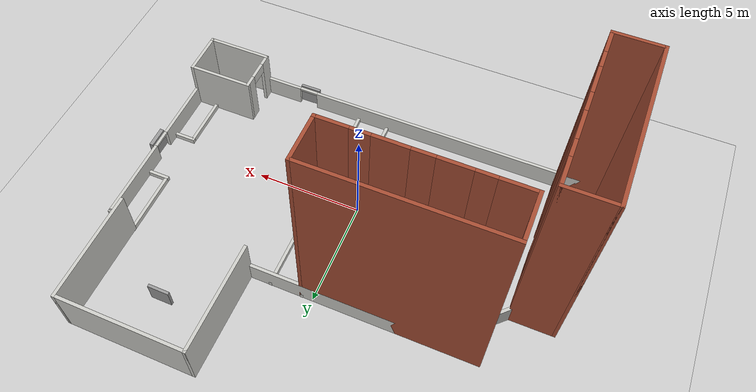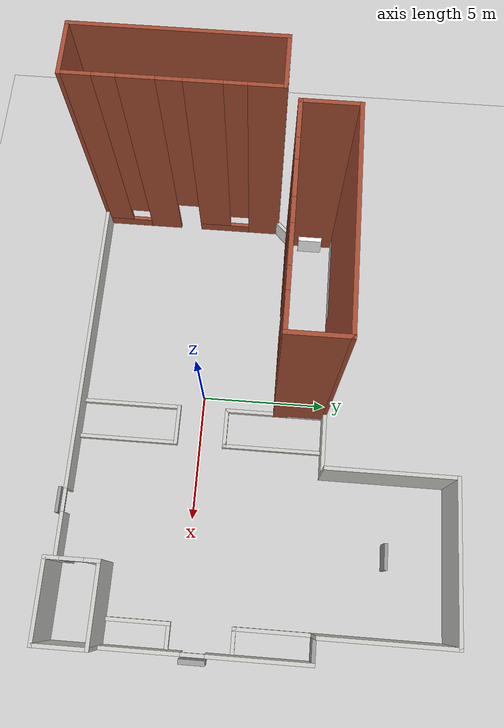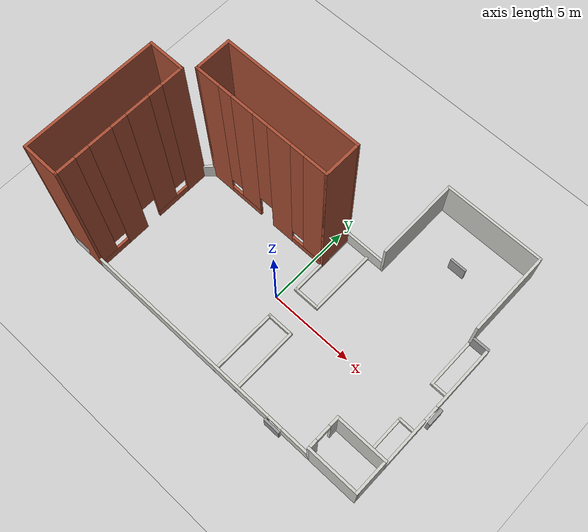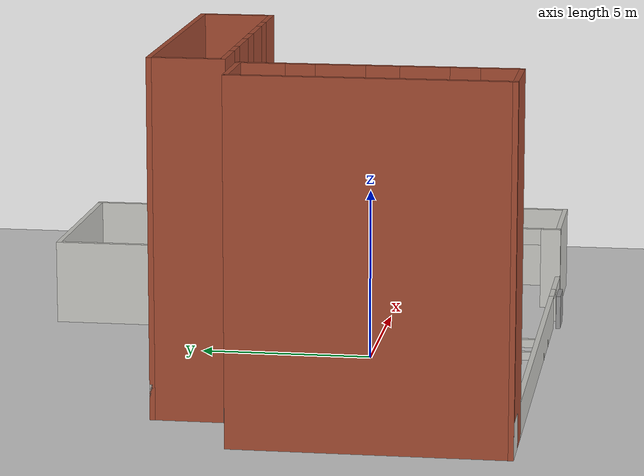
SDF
<sdf version="1.7">
 <world name="default">
  <light name="sun" type="directional">
   <pose>0 0 10 0 -0 0</pose>
   <diffuse>0.8 0.8 0.8 1</diffuse>
   <specular>0.2 0.2 0.2 1</specular>
   <attenuation>
    <range>1000</range>
    <constant>0.9</constant>
    <linear>0.01</linear>
    <quadratic>0.001</quadratic>
   </attenuation>
   <direction>-0.5 0.1 -0.9</direction>
   <spot><inner_angle>0</inner_angle><outer_angle>0</outer_angle><falloff>0</falloff></spot>
  </light>
  <model name="ground_plane">
   <static>1</static>
   <link name="link">
    <collision name="collision">
     <geometry><plane><normal>0 0 1</normal><size>100 100</size></plane></geometry>
     <surface><friction><ode><mu>100</mu><mu2>50</mu2></ode></friction></surface>
    </collision>
    <visual name="visual">
     <cast_shadows>0</cast_shadows>
     <geometry><plane><normal>0 0 1</normal><size>100 100</size></plane></geometry>
     <material>
      <script><uri>file://media/materials/scripts/gazebo.material</uri><name>Gazebo/Grey</name></script>
     </material>
    </visual>
   </link>
  </model>
  <gravity>0 0 -9.8</gravity>
  <magnetic_field>6e-06 2.3e-05 -4.2e-05</magnetic_field>
  <atmosphere type="adiabatic"/>
  <physics type="ode">
   <max_step_size>0.001</max_step_size>
   <real_time_factor>1</real_time_factor>
   <real_time_update_rate>1000</real_time_update_rate>
  </physics>
  <scene><ambient>0.4 0.4 0.4 1</ambient><background>0.7 0.7 0.7 1</background><shadows>1</shadows></scene>
  <audio><device>default</device></audio>
  <spherical_coordinates>
   <surface_model>EARTH_WGS84</surface_model>
   <latitude_deg>0</latitude_deg>
   <longitude_deg>0</longitude_deg>
   <elevation>0</elevation>
   <heading_deg>0</heading_deg>
  </spherical_coordinates>
  <model name="apartment">
   <pose>0 2.5 0 0 -0 0</pose>
   <link name="Wall_11">
    <collision name="Wall_11_Collision">
     <geometry><box><size>3.15 0.15 2.5</size></box></geometry>
     <pose>0 0 1.25 0 -0 0</pose>
    </collision>
    <visual name="Wall_11_Visual">
     <pose>0 0 1.25 0 -0 0</pose>
     <geometry><box><size>3.15 0.15 2.5</size></box></geometry>
     <material>
      <script><uri>file://media/materials/scripts/gazebo.material</uri><name>Gazebo/CeilingTiled</name></script>
      <ambient>1 1 1 1</ambient>
     </material>
     <meta><layer>0</layer></meta>
    </visual>
    <pose>8.5 -5.5 0 0 -0 3.14159</pose>
   </link>
   <link name="Wall_12">
    <pose>7 -6.5 0 0 -0 -1.5708</pose>
    <visual name="Wall_12_Visual_0">
     <pose>-0.757715 0 1.25 0 -0 0</pose>
     <geometry><box><size>0.63457 0.15 2.5</size></box></geometry>
     <material>
      <script><uri>file://media/materials/scripts/gazebo.material</uri><name>Gazebo/CeilingTiled</name></script>
      <ambient>1 1 1 1</ambient>
     </material>
     <meta><layer>0</layer></meta>
    </visual>
    <collision name="Wall_12_Collision_0">
     <geometry><box><size>0.63457 0.15 2.5</size></box></geometry>
     <pose>-0.757715 0 1.25 0 -0 0</pose>
    </collision>
    <visual name="Wall_12_Visual_1">
     <pose>0.767285 0 1.25 0 -0 0</pose>
     <geometry><box><size>0.61543 0.15 2.5</size></box></geometry>
     <material>
      <script><uri>file://media/materials/scripts/gazebo.material</uri><name>Gazebo/CeilingTiled</name></script>
      <ambient>1 1 1 1</ambient>
     </material>
     <meta><layer>0</layer></meta>
    </visual>
    <collision name="Wall_12_Collision_1">
     <geometry><box><size>0.61543 0.15 2.5</size></box></geometry>
     <pose>0.767285 0 1.25 0 -0 0</pose>
    </collision>
    <visual name="Wall_12_Visual_2">
     <pose>0.00957 0 2.25 0 -0 0</pose>
     <geometry><box><size>0.9 0.15 0.5</size></box></geometry>
     <material>
      <script><uri>file://media/materials/scripts/gazebo.material</uri><name>Gazebo/CeilingTiled</name></script>
      <ambient>1 1 1 1</ambient>
     </material>
     <meta><layer>0</layer></meta>
    </visual>
    <collision name="Wall_12_Collision_2">
     <geometry><box><size>0.9 0.15 0.5</size></box></geometry>
     <pose>0.00957 0 2.25 0 -0 0</pose>
    </collision>
   </link>
   <link name="Wall_14">
    <pose>10 -1.5 0 0 -0 -1.5708</pose>
    <visual name="Wall_14_Visual_0">
     <pose>-2.04432 0 0.5 0 -0 0</pose>
     <geometry><box><size>4.06137 0.15 1</size></box></geometry>
     <material>
      <script><uri>file://media/materials/scripts/gazebo.material</uri><name>Gazebo/CeilingTiled</name></script>
      <ambient>1 1 1 1</ambient>
     </material>
     <meta><layer>0</layer></meta>
    </visual>
    <collision name="Wall_14_Collision_0">
     <geometry><box><size>4.06137 0.15 1</size></box></geometry>
     <pose>-2.04432 0 0.5 0 -0 0</pose>
    </collision>
    <visual name="Wall_14_Visual_1">
     <pose>2.48068 0 0.5 0 -0 0</pose>
     <geometry><box><size>3.18864 0.15 1</size></box></geometry>
     <material>
      <script><uri>file://media/materials/scripts/gazebo.material</uri><name>Gazebo/CeilingTiled</name></script>
      <ambient>1 1 1 1</ambient>
     </material>
     <meta><layer>0</layer></meta>
    </visual>
    <collision name="Wall_14_Collision_1">
     <geometry><box><size>3.18864 0.3 1</size></box></geometry>
     <pose>2.48068 0 0.5 0 -0 0</pose>
    </collision>
    <visual name="Wall_14_Visual_2">
     <pose>0.436365 0 0.95 0 -0 0</pose>
     <geometry><box><size>0.9 0.15 0.1</size></box></geometry>
     <material>
      <script><uri>file://media/materials/scripts/gazebo.material</uri><name>Gazebo/CeilingTiled</name></script>
      <ambient>1 1 1 1</ambient>
     </material>
     <meta><layer>0</layer></meta>
    </visual>
    <collision name="Wall_14_Collision_2">
     <geometry><box><size>0.9 0.15 0.1</size></box></geometry>
     <pose>0.436365 0 0.95 0 -0 0</pose>
    </collision>
   </link>
   <link name="Wall_15">
    <collision name="Wall_15_Collision">
     <geometry><box><size>2.15 0.15 2.5</size></box></geometry>
     <pose>0 0 1.25 0 -0 0</pose>
    </collision>
    <visual name="Wall_15_Visual">
     <pose>0 0 1.25 0 -0 0</pose>
     <geometry><box><size>2.15 0.15 2.5</size></box></geometry>
     <material>
      <script><uri>file://media/materials/scripts/gazebo.material</uri><name>Gazebo/CeilingTiled</name></script>
      <ambient>1 1 1 1</ambient>
     </material>
     <meta><layer>0</layer></meta>
    </visual>
    <pose>10 -6.5 0 0 -0 -1.5708</pose>
   </link>
   <link name="Wall_16">
    <collision name="Wall_16_Collision">
     <geometry><box><size>3.15 0.15 2.5</size></box></geometry>
     <pose>0 0 1.25 0 -0 0</pose>
    </collision>
    <visual name="Wall_16_Visual">
     <pose>0 0 1.25 0 -0 0</pose>
     <geometry><box><size>3.15 0.15 2.5</size></box></geometry>
     <material>
      <script><uri>file://media/materials/scripts/gazebo.material</uri><name>Gazebo/CeilingTiled</name></script>
      <ambient>1 1 1 1</ambient>
     </material>
     <meta><layer>0</layer></meta>
    </visual>
    <pose>8.5 -7.5 0 0 -0 3.14159</pose>
   </link>
   <link name="Wall_20">
    <collision name="Wall_20_Collision">
     <geometry><box><size>4.15 0.15 0.3</size></box></geometry>
     <pose>0 0 0.065 0 -0 0</pose>
    </collision>
    <visual name="Wall_20_Visual">
     <pose>0 0 0.065 0 -0 0</pose>
     <geometry><box><size>4.15 0.15 0.3</size></box></geometry>
     <material>
      <script><uri>file://media/materials/scripts/gazebo.material</uri><name>Gazebo/CeilingTiled</name></script>
      <ambient>1 1 1 1</ambient>
     </material>
     <meta><layer>0</layer></meta>
    </visual>
    <pose>0.5 -5.5 0 0 -0 1.5708</pose>
   </link>
   <link name="Wall_21">
    <collision name="Wall_21_Collision">
     <geometry><box><size>1.65 0.15 0.3</size></box></geometry>
     <pose>0 0 0.065 0 -0 0</pose>
    </collision>
    <visual name="Wall_21_Visual">
     <pose>0 0 0.065 0 -0 0</pose>
     <geometry><box><size>1.65 0.15 0.3</size></box></geometry>
     <material>
      <script><uri>file://media/materials/scripts/gazebo.material</uri><name>Gazebo/CeilingTiled</name></script>
      <ambient>1 1 1 1</ambient>
     </material>
     <meta><layer>0</layer></meta>
    </visual>
    <pose>1.25 -3.5 0 0 -0 0</pose>
   </link>
   <link name="Wall_22">
    <collision name="Wall_22_Collision">
     <geometry><box><size>4.15 0.15 0.3</size></box></geometry>
     <pose>0 0 0.065 0 -0 0</pose>
    </collision>
    <visual name="Wall_22_Visual">
     <pose>0 0 0.065 0 -0 0</pose>
     <geometry><box><size>4.15 0.15 0.3</size></box></geometry>
     <material>
      <script><uri>file://media/materials/scripts/gazebo.material</uri><name>Gazebo/CeilingTiled</name></script>
      <ambient>1 1 1 1</ambient>
     </material>
     <meta><layer>0</layer></meta>
    </visual>
    <pose>2 -5.5 0 0 -0 -1.5708</pose>
   </link>
   <link name="Wall_24">
    <collision name="Wall_24_Collision">
     <geometry><box><size>1.15 0.15 0.3</size></box></geometry>
     <pose>0 0 0.065 0 -0 0</pose>
    </collision>
    <visual name="Wall_24_Visual">
     <pose>0 0 0.065 0 -0 0</pose>
     <geometry><box><size>1.15 0.15 0.3</size></box></geometry>
     <material>
      <script><uri>file://media/materials/scripts/gazebo.material</uri><name>Gazebo/CeilingTiled</name></script>
      <ambient>1 1 1 1</ambient>
     </material>
     <meta><layer>0</layer></meta>
    </visual>
    <pose>9.5 -3 0 0 -0 3.14159</pose>
   </link>
   <link name="Wall_25">
    <collision name="Wall_25_Collision">
     <geometry><box><size>2.65 0.15 0.3</size></box></geometry>
     <pose>0 0 0.065 0 -0 0</pose>
    </collision>
    <visual name="Wall_25_Visual">
     <pose>0 0 0.065 0 -0 0</pose>
     <geometry><box><size>2.65 0.15 0.3</size></box></geometry>
     <material>
      <script><uri>file://media/materials/scripts/gazebo.material</uri><name>Gazebo/CeilingTiled</name></script>
      <ambient>1 1 1 1</ambient>
     </material>
     <meta><layer>0</layer></meta>
    </visual>
    <pose>9 -4.25 0 0 -0 -1.5708</pose>
   </link>
   <link name="Wall_27">
    <collision name="Wall_27_Collision">
     <geometry><box><size>1.15 0.15 0.3</size></box></geometry>
     <pose>0 0 0.065 0 -0 0</pose>
    </collision>
    <visual name="Wall_27_Visual">
     <pose>0 0 0.065 0 -0 0</pose>
     <geometry><box><size>1.15 0.15 0.3</size></box></geometry>
     <material>
      <script><uri>file://media/materials/scripts/gazebo.material</uri><name>Gazebo/CeilingTiled</name></script>
      <ambient>1 1 1 1</ambient>
     </material>
     <meta><layer>0</layer></meta>
    </visual>
    <pose>9.5 -0.5 0 0 -0 3.14159</pose>
   </link>
   <link name="Wall_28">
    <collision name="Wall_28_Collision">
     <geometry><box><size>3.15 0.15 0.3</size></box></geometry>
     <pose>0 0 0.065 0 -0 0</pose>
    </collision>
    <visual name="Wall_28_Visual">
     <pose>0 0 0.065 0 -0 0</pose>
     <geometry><box><size>3.15 0.15 0.3</size></box></geometry>
     <material>
      <script><uri>file://media/materials/scripts/gazebo.material</uri><name>Gazebo/CeilingTiled</name></script>
      <ambient>1 1 1 1</ambient>
     </material>
     <meta><layer>0</layer></meta>
    </visual>
    <pose>9 1 0 0 -0 1.5708</pose>
   </link>
   <link name="Wall_31">
    <collision name="Wall_31_Collision">
     <geometry><box><size>4.15 0.15 0.3</size></box></geometry>
     <pose>0 0 0.065 0 -0 0</pose>
    </collision>
    <visual name="Wall_31_Visual">
     <pose>0 0 0.065 0 -0 0</pose>
     <geometry><box><size>4.15 0.15 0.3</size></box></geometry>
     <material>
      <script><uri>file://media/materials/scripts/gazebo.material</uri><name>Gazebo/CeilingTiled</name></script>
      <ambient>1 1 1 1</ambient>
     </material>
     <meta><layer>0</layer></meta>
    </visual>
    <pose>0.5 0.5 0 0 -0 -1.5708</pose>
   </link>
   <link name="Wall_32">
    <collision name="Wall_32_Collision">
     <geometry><box><size>1.65 0.15 0.3</size></box></geometry>
     <pose>0 0 0.065 0 -0 0</pose>
    </collision>
    <visual name="Wall_32_Visual">
     <pose>0 0 0.065 0 -0 0</pose>
     <geometry><box><size>1.65 0.15 0.3</size></box></geometry>
     <material>
      <script><uri>file://media/materials/scripts/gazebo.material</uri><name>Gazebo/CeilingTiled</name></script>
      <ambient>1 1 1 1</ambient>
     </material>
     <meta><layer>0</layer></meta>
    </visual>
    <pose>1.25 -1.5 0 0 -0 0</pose>
   </link>
   <link name="Wall_33">
    <collision name="Wall_33_Collision">
     <geometry><box><size>4.15 0.15 0.3</size></box></geometry>
     <pose>0 0 0.065 0 -0 0</pose>
    </collision>
    <visual name="Wall_33_Visual">
     <pose>0 0 0.065 0 -0 0</pose>
     <geometry><box><size>4.15 0.15 0.3</size></box></geometry>
     <material>
      <script><uri>file://media/materials/scripts/gazebo.material</uri><name>Gazebo/CeilingTiled</name></script>
      <ambient>1 1 1 1</ambient>
     </material>
     <meta><layer>0</layer></meta>
    </visual>
    <pose>2 0.5 0 0 -0 1.5708</pose>
   </link>
   <link name="Wall_35">
    <collision name="Wall_35_Collision">
     <geometry><box><size>2.15 0.15 10</size></box></geometry>
     <pose>0 0 5 0 -0 0</pose>
    </collision>
    <visual name="Wall_35_Visual">
     <pose>0 0 5 0 -0 0</pose>
     <geometry><box><size>2.15 0.15 10</size></box></geometry>
     <material>
      <script><uri>file://media/materials/scripts/gazebo.material</uri><name>Gazebo/Bricks</name></script>
      <ambient>1 1 1 1</ambient>
     </material>
     <meta><layer>0</layer></meta>
    </visual>
    <pose>-7.5 1.5 0 0 -0 -1.5708</pose>
   </link>
   <link name="Wall_36">
    <pose>-3.5 0.5 0 0 -0 0</pose>
    <visual name="Wall_36_Visual_0">
     <pose>-3.33219 0 5 0 -0 0</pose>
     <geometry><box><size>1.48562 0.15 10</size></box></geometry>
     <material>
      <script><uri>file://media/materials/scripts/gazebo.material</uri><name>Gazebo/Bricks</name></script>
      <ambient>1 1 1 1</ambient>
     </material>
     <meta><layer>0</layer></meta>
    </visual>
    <collision name="Wall_36_Collision_0">
     <geometry><box><size>1.48562 0.15 10</size></box></geometry>
     <pose>-3.33219 0 5 0 -0 0</pose>
    </collision>
    <visual name="Wall_36_Visual_1">
     <pose>1.1635 0 5 0 -0 0</pose>
     <geometry><box><size>1.4227 0.15 10</size></box></geometry>
     <material>
      <script><uri>file://media/materials/scripts/gazebo.material</uri><name>Gazebo/Bricks</name></script>
      <ambient>1 1 1 1</ambient>
     </material>
     <meta><layer>0</layer></meta>
    </visual>
    <collision name="Wall_36_Collision_1">
     <geometry><box><size>1.4227 0.15 10</size></box></geometry>
     <pose>1.1635 0 5 0 -0 0</pose>
    </collision>
    <visual name="Wall_36_Visual_2">
     <pose>-1.51862 0 0.25 0 -0 0</pose>
     <geometry><box><size>2.14153 0.15 0.5</size></box></geometry>
     <material>
      <script><uri>file://media/materials/scripts/gazebo.material</uri><name>Gazebo/Bricks</name></script>
      <ambient>1 1 1 1</ambient>
     </material>
     <meta><layer>0</layer></meta>
    </visual>
    <collision name="Wall_36_Collision_2">
     <geometry><box><size>2.14153 0.15 0.5</size></box></geometry>
     <pose>-1.51862 0 0.25 0 -0 0</pose>
    </collision>
    <visual name="Wall_36_Visual_3">
     <pose>2.97492 0 0.25 0 -0 0</pose>
     <geometry><box><size>2.20016 0.15 0.5</size></box></geometry>
     <material>
      <script><uri>file://media/materials/scripts/gazebo.material</uri><name>Gazebo/Bricks</name></script>
      <ambient>1 1 1 1</ambient>
     </material>
     <meta><layer>0</layer></meta>
    </visual>
    <collision name="Wall_36_Collision_3">
     <geometry><box><size>2.20016 0.15 0.5</size></box></geometry>
     <pose>2.97492 0 0.25 0 -0 0</pose>
    </collision>
    <visual name="Wall_36_Visual_4">
     <pose>-1.11862 0 5.25 0 -0 0</pose>
     <geometry><box><size>1.34153 0.15 9.5</size></box></geometry>
     <material>
      <script><uri>file://media/materials/scripts/gazebo.material</uri><name>Gazebo/Bricks</name></script>
      <ambient>1 1 1 1</ambient>
     </material>
     <meta><layer>0</layer></meta>
    </visual>
    <collision name="Wall_36_Collision_4">
     <geometry><box><size>1.14153 0.15 9.5</size></box></geometry>
     <pose>-1.11862 0 5.25 0 -0 0</pose>
    </collision>
    <visual name="Wall_36_Visual_5">
     <pose>-1.11862 0 5.25 0 -0 0</pose>
     <geometry><box><size>1.34153 0.15 9.5</size></box></geometry>
     <material>
      <script><uri>file://media/materials/scripts/gazebo.material</uri><name>Gazebo/Bricks</name></script>
      <ambient>1 1 1 1</ambient>
     </material>
     <meta><layer>0</layer></meta>
    </visual>
    <collision name="Wall_36_Collision_5">
     <geometry><box><size>1.34153 0.15 9.5</size></box></geometry>
     <pose>-1.11862 0 5.25 0 -0 0</pose>
    </collision>
    <visual name="Wall_36_Visual_6">
     <pose>3.37492 0 5.25 0 -0 0</pose>
     <geometry><box><size>1.40016 0.15 9.5</size></box></geometry>
     <material>
      <script><uri>file://media/materials/scripts/gazebo.material</uri><name>Gazebo/Bricks</name></script>
      <ambient>1 1 1 1</ambient>
     </material>
     <meta><layer>0</layer></meta>
    </visual>
    <collision name="Wall_36_Collision_6">
     <geometry><box><size>1.40016 0.15 9.5</size></box></geometry>
     <pose>3.37492 0 5.25 0 -0 0</pose>
    </collision>
    <visual name="Wall_36_Visual_7">
     <pose>-2.18938 0 5.65 0 -0 0</pose>
     <geometry><box><size>0.8 0.15 8.7</size></box></geometry>
     <material>
      <script><uri>file://media/materials/scripts/gazebo.material</uri><name>Gazebo/Bricks</name></script>
      <ambient>1 1 1 1</ambient>
     </material>
     <meta><layer>0</layer></meta>
    </visual>
    <collision name="Wall_36_Collision_7">
     <geometry><box><size>0.8 0.15 8.7</size></box></geometry>
     <pose>-2.18938 0 5.65 0 -0 0</pose>
    </collision>
    <visual name="Wall_36_Visual_8">
     <pose>2.27485 0 5.65 0 -0 0</pose>
     <geometry><box><size>0.8 0.15 8.7</size></box></geometry>
     <material>
      <script><uri>file://media/materials/scripts/gazebo.material</uri><name>Gazebo/Bricks</name></script>
      <ambient>1 1 1 1</ambient>
     </material>
     <meta><layer>0</layer></meta>
    </visual>
    <collision name="Wall_36_Collision_8">
     <geometry><box><size>0.8 0.15 8.7</size></box></geometry>
     <pose>2.27485 0 5.65 0 -0 0</pose>
    </collision>
    <visual name="Wall_36_Visual_9">
     <pose>0.002147 0 6 0 -0 0</pose>
     <geometry><box><size>0.9 0.15 8</size></box></geometry>
     <material>
      <script><uri>file://media/materials/scripts/gazebo.material</uri><name>Gazebo/Bricks</name></script>
      <ambient>1 1 1 1</ambient>
     </material>
     <meta><layer>0</layer></meta>
    </visual>
    <collision name="Wall_36_Collision_9">
     <geometry><box><size>1.05 0.3 8</size></box></geometry>
     <pose>0.002147 0 6 0 -0 0</pose>
    </collision>
    <visual name="Wall_36_Visual_10">
     <pose>0.002147 0 6 0 -0 0</pose>
     <geometry><box><size>0.9 0.15 8</size></box></geometry>
     <material>
      <script><uri>file://media/materials/scripts/gazebo.material</uri><name>Gazebo/Bricks</name></script>
      <ambient>1 1 1 1</ambient>
     </material>
     <meta><layer>0</layer></meta>
    </visual>
    <collision name="Wall_36_Collision_10">
     <geometry><box><size>0.9 0.15 8</size></box></geometry>
     <pose>0.002147 0 6 0 -0 0</pose>
    </collision>
   </link>
   <link name="Wall_37">
    <collision name="Wall_37_Collision">
     <geometry><box><size>2.15 0.15 10</size></box></geometry>
     <pose>0 0 5 0 -0 0</pose>
    </collision>
    <visual name="Wall_37_Visual">
     <pose>0 0 5 0 -0 0</pose>
     <geometry><box><size>2.15 0.15 10</size></box></geometry>
     <material>
      <script><uri>file://media/materials/scripts/gazebo.material</uri><name>Gazebo/Bricks</name></script>
      <ambient>1 1 1 1</ambient>
     </material>
     <meta><layer>0</layer></meta>
    </visual>
    <pose>0.5 1.5 0 0 -0 1.5708</pose>
   </link>
   <link name="Wall_38">
    <collision name="Wall_38_Collision">
     <geometry><box><size>8.15 0.15 10</size></box></geometry>
     <pose>0 0 5 0 -0 0</pose>
    </collision>
    <visual name="Wall_38_Visual">
     <pose>0 0 5 0 -0 0</pose>
     <geometry><box><size>8.15 0.15 10</size></box></geometry>
     <material>
      <script><uri>file://media/materials/scripts/gazebo.material</uri><name>Gazebo/Bricks</name></script>
      <ambient>1 1 1 1</ambient>
     </material>
     <meta><layer>0</layer></meta>
    </visual>
    <pose>-3.5 2.5 0 0 -0 3.14159</pose>
   </link>
   <link name="Wall_40">
    <collision name="Wall_40_Collision">
     <geometry><box><size>2.15 0.15 10</size></box></geometry>
     <pose>0 0 5 0 -0 0</pose>
    </collision>
    <visual name="Wall_40_Visual">
     <pose>0 0 5 0 -0 0</pose>
     <geometry><box><size>2.15 0.15 10</size></box></geometry>
     <material>
      <script><uri>file://media/materials/scripts/gazebo.material</uri><name>Gazebo/Bricks</name></script>
      <ambient>1 1 1 1</ambient>
     </material>
     <meta><layer>0</layer></meta>
    </visual>
    <pose>-9 0 0 0 -0 0</pose>
   </link>
   <link name="Wall_41">
    <pose>-8 -3.75 0 0 -0 -1.5708</pose>
    <visual name="Wall_41_Visual_0">
     <pose>-3.15924 0 5 0 -0 0</pose>
     <geometry><box><size>1.33152 0.15 10</size></box></geometry>
     <material>
      <script><uri>file://media/materials/scripts/gazebo.material</uri><name>Gazebo/Bricks</name></script>
      <ambient>1 1 1 1</ambient>
     </material>
     <meta><layer>0</layer></meta>
    </visual>
    <collision name="Wall_41_Collision_0">
     <geometry><box><size>1.33152 0.15 10</size></box></geometry>
     <pose>-3.15924 0 5 0 -0 0</pose>
    </collision>
    <visual name="Wall_41_Visual_1">
     <pose>1.20529 0 5 0 -0 0</pose>
     <geometry><box><size>1.31448 0.15 10</size></box></geometry>
     <material>
      <script><uri>file://media/materials/scripts/gazebo.material</uri><name>Gazebo/Bricks</name></script>
      <ambient>1 1 1 1</ambient>
     </material>
     <meta><layer>0</layer></meta>
    </visual>
    <collision name="Wall_41_Collision_1">
     <geometry><box><size>1.31448 0.15 10</size></box></geometry>
     <pose>1.20529 0 5 0 -0 0</pose>
    </collision>
    <visual name="Wall_41_Visual_2">
     <pose>-1.42272 0 0.25 0 -0 0</pose>
     <geometry><box><size>2.14153 0.15 0.5</size></box></geometry>
     <material>
      <script><uri>file://media/materials/scripts/gazebo.material</uri><name>Gazebo/Bricks</name></script>
      <ambient>1 1 1 1</ambient>
     </material>
     <meta><layer>0</layer></meta>
    </visual>
    <collision name="Wall_41_Collision_2">
     <geometry><box><size>2.14153 0.15 0.5</size></box></geometry>
     <pose>-1.42272 0 0.25 0 -0 0</pose>
    </collision>
    <visual name="Wall_41_Visual_3">
     <pose>2.84376 0 0.25 0 -0 0</pose>
     <geometry><box><size>1.96248 0.15 0.5</size></box></geometry>
     <material>
      <script><uri>file://media/materials/scripts/gazebo.material</uri><name>Gazebo/Bricks</name></script>
      <ambient>1 1 1 1</ambient>
     </material>
     <meta><layer>0</layer></meta>
    </visual>
    <collision name="Wall_41_Collision_3">
     <geometry><box><size>1.96248 0.15 0.5</size></box></geometry>
     <pose>2.84376 0 0.25 0 -0 0</pose>
    </collision>
    <visual name="Wall_41_Visual_4">
     <pose>-1.02272 0 5.25 0 -0 0</pose>
     <geometry><box><size>1.34153 0.15 9.5</size></box></geometry>
     <material>
      <script><uri>file://media/materials/scripts/gazebo.material</uri><name>Gazebo/Bricks</name></script>
      <ambient>1 1 1 1</ambient>
     </material>
     <meta><layer>0</layer></meta>
    </visual>
    <collision name="Wall_41_Collision_4">
     <geometry><box><size>1.34153 0.15 9.5</size></box></geometry>
     <pose>-1.02272 0 5.25 0 -0 0</pose>
    </collision>
    <visual name="Wall_41_Visual_5">
     <pose>-1.02272 0 5.25 0 -0 0</pose>
     <geometry><box><size>1.34153 0.15 9.5</size></box></geometry>
     <material>
      <script><uri>file://media/materials/scripts/gazebo.material</uri><name>Gazebo/Bricks</name></script>
      <ambient>1 1 1 1</ambient>
     </material>
     <meta><layer>0</layer></meta>
    </visual>
    <collision name="Wall_41_Collision_5">
     <geometry><box><size>1.34153 0.15 9.5</size></box></geometry>
     <pose>-1.02272 0 5.25 0 -0 0</pose>
    </collision>
    <visual name="Wall_41_Visual_6">
     <pose>3.24376 0 5.25 0 -0 0</pose>
     <geometry><box><size>1.16248 0.15 9.5</size></box></geometry>
     <material>
      <script><uri>file://media/materials/scripts/gazebo.material</uri><name>Gazebo/Bricks</name></script>
      <ambient>1 1 1 1</ambient>
     </material>
     <meta><layer>0</layer></meta>
    </visual>
    <collision name="Wall_41_Collision_6">
     <geometry><box><size>1.16248 0.15 9.5</size></box></geometry>
     <pose>3.24376 0 5.25 0 -0 0</pose>
    </collision>
    <visual name="Wall_41_Visual_7">
     <pose>-2.09348 0 5.65 0 -0 0</pose>
     <geometry><box><size>0.8 0.15 8.7</size></box></geometry>
     <material>
      <script><uri>file://media/materials/scripts/gazebo.material</uri><name>Gazebo/Bricks</name></script>
      <ambient>1 1 1 1</ambient>
     </material>
     <meta><layer>0</layer></meta>
    </visual>
    <collision name="Wall_41_Collision_7">
     <geometry><box><size>0.8 0.15 8.7</size></box></geometry>
     <pose>-2.09348 0 5.65 0 -0 0</pose>
    </collision>
    <visual name="Wall_41_Visual_8">
     <pose>2.26252 0 5.65 0 -0 0</pose>
     <geometry><box><size>0.8 0.15 8.7</size></box></geometry>
     <material>
      <script><uri>file://media/materials/scripts/gazebo.material</uri><name>Gazebo/Bricks</name></script>
      <ambient>1 1 1 1</ambient>
     </material>
     <meta><layer>0</layer></meta>
    </visual>
    <collision name="Wall_41_Collision_8">
     <geometry><box><size>0.8 0.15 8.7</size></box></geometry>
     <pose>2.26252 0 5.65 0 -0 0</pose>
    </collision>
    <visual name="Wall_41_Visual_9">
     <pose>0.098048 0 6 0 -0 0</pose>
     <geometry><box><size>0.9 0.15 8</size></box></geometry>
     <material>
      <script><uri>file://media/materials/scripts/gazebo.material</uri><name>Gazebo/Bricks</name></script>
      <ambient>1 1 1 1</ambient>
     </material>
     <meta><layer>0</layer></meta>
    </visual>
    <collision name="Wall_41_Collision_9">
     <geometry><box><size>0.9 0.15 8</size></box></geometry>
     <pose>0.098048 0 6 0 -0 0</pose>
    </collision>
    <visual name="Wall_41_Visual_10">
     <pose>0.098048 0 6 0 -0 0</pose>
     <geometry><box><size>0.9 0.15 8</size></box></geometry>
     <material>
      <script><uri>file://media/materials/scripts/gazebo.material</uri><name>Gazebo/Bricks</name></script>
      <ambient>1 1 1 1</ambient>
     </material>
     <meta><layer>0</layer></meta>
    </visual>
    <collision name="Wall_41_Collision_10">
     <geometry><box><size>0.9 0.15 8</size></box></geometry>
     <pose>0.098048 0 6 0 -0 0</pose>
    </collision>
   </link>
   <link name="Wall_42">
    <collision name="Wall_42_Collision">
     <geometry><box><size>2.15 0.15 10</size></box></geometry>
     <pose>0 0 5 0 -0 0</pose>
    </collision>
    <visual name="Wall_42_Visual">
     <pose>0 0 5 0 -0 0</pose>
     <geometry><box><size>2.15 0.15 10</size></box></geometry>
     <material>
      <script><uri>file://media/materials/scripts/gazebo.material</uri><name>Gazebo/Bricks</name></script>
      <ambient>1 1 1 1</ambient>
     </material>
     <meta><layer>0</layer></meta>
    </visual>
    <pose>-9 -7.5 0 0 -0 3.14159</pose>
   </link>
   <link name="Wall_43">
    <collision name="Wall_43_Collision">
     <geometry><box><size>7.65 0.15 10</size></box></geometry>
     <pose>0 0 5 0 -0 0</pose>
    </collision>
    <visual name="Wall_43_Visual">
     <pose>0 0 5 0 -0 0</pose>
     <geometry><box><size>7.65 0.15 10</size></box></geometry>
     <material>
      <script><uri>file://media/materials/scripts/gazebo.material</uri><name>Gazebo/Bricks</name></script>
      <ambient>1 1 1 1</ambient>
     </material>
     <meta><layer>0</layer></meta>
    </visual>
    <pose>-10 -3.75 0 0 -0 1.5708</pose>
   </link>
   <link name="Wall_45">
    <collision name="Wall_45_Collision">
     <geometry><box><size>10.65 0.15 1</size></box></geometry>
     <pose>0 0 0.5 0 -0 0</pose>
    </collision>
    <visual name="Wall_45_Visual">
     <pose>0 0 0.5 0 -0 0</pose>
     <geometry><box><size>10.65 0.15 1</size></box></geometry>
     <material>
      <script><uri>file://media/materials/scripts/gazebo.material</uri><name>Gazebo/CeilingTiled</name></script>
      <ambient>1 1 1 1</ambient>
     </material>
     <meta><layer>0</layer></meta>
    </visual>
    <pose>-2.25 2.5 0 0 -0 0</pose>
   </link>
   <link name="Wall_46">
    <collision name="Wall_46_Collision">
     <geometry><box><size>5.15 0.15 2.5</size></box></geometry>
     <pose>0 0 1.25 0 -0 0</pose>
    </collision>
    <visual name="Wall_46_Visual">
     <pose>0 0 1.25 0 -0 0</pose>
     <geometry><box><size>5.15 0.15 2.5</size></box></geometry>
     <material>
      <script><uri>file://media/materials/scripts/gazebo.material</uri><name>Gazebo/CeilingTiled</name></script>
      <ambient>1 1 1 1</ambient>
     </material>
     <meta><layer>0</layer></meta>
    </visual>
    <pose>3 5 0 0 -0 1.5708</pose>
   </link>
   <link name="Wall_47">
    <collision name="Wall_47_Collision">
     <geometry><box><size>6.15 0.15 2.5</size></box></geometry>
     <pose>0 0 1.25 0 -0 0</pose>
    </collision>
    <visual name="Wall_47_Visual">
     <pose>0 0 1.25 0 -0 0</pose>
     <geometry><box><size>6.15 0.15 2.5</size></box></geometry>
     <material>
      <script><uri>file://media/materials/scripts/gazebo.material</uri><name>Gazebo/CeilingTiled</name></script>
      <ambient>1 1 1 1</ambient>
     </material>
     <meta><layer>0</layer></meta>
    </visual>
    <pose>6 7.5 0 0 -0 0</pose>
   </link>
   <link name="Wall_48">
    <collision name="Wall_48_Collision">
     <geometry><box><size>5.15 0.15 2.5</size></box></geometry>
     <pose>0 0 1.25 0 -0 0</pose>
    </collision>
    <visual name="Wall_48_Visual">
     <pose>0 0 1.25 0 -0 0</pose>
     <geometry><box><size>5.15 0.15 2.5</size></box></geometry>
     <material>
      <script><uri>file://media/materials/scripts/gazebo.material</uri><name>Gazebo/CeilingTiled</name></script>
      <ambient>1 1 1 1</ambient>
     </material>
     <meta><layer>0</layer></meta>
    </visual>
    <pose>9 5 0 0 -0 -1.5708</pose>
   </link>
   <link name="Wall_49">
    <collision name="Wall_49_Collision">
     <geometry><box><size>1.15 0.15 1</size></box></geometry>
     <pose>0 0 0.5 0 -0 0</pose>
    </collision>
    <visual name="Wall_49_Visual">
     <pose>0 0 0.5 0 -0 0</pose>
     <geometry><box><size>1.15 0.15 1</size></box></geometry>
     <material>
      <script><uri>file://media/materials/scripts/gazebo.material</uri><name>Gazebo/Grey</name></script>
      <ambient>1 1 1 1</ambient>
     </material>
     <meta><layer>0</layer></meta>
    </visual>
    <pose>9.5 2.5 0 0 -0 0</pose>
   </link>
   <link name="Wall_53">
    <collision name="Wall_53_Collision">
     <geometry><box><size>0.857107 0.15 1</size></box></geometry>
     <pose>0 0 0.5 0 -0 0</pose>
    </collision>
    <visual name="Wall_53_Visual">
     <pose>0 0 0.5 0 -0 0</pose>
     <geometry><box><size>0.857107 0.15 1</size></box></geometry>
     <material>
      <script><uri>file://media/materials/scripts/gazebo.material</uri><name>Gazebo/CeilingTiled</name></script>
      <ambient>1 1 1 1</ambient>
     </material>
     <meta><layer>0</layer></meta>
    </visual>
    <pose>-7.75 0.25 0 0 -0 0.785398</pose>
   </link>
   <link name="Wall_7">
    <pose>-1.5 -7.5 0 0 -0 0</pose>
    <visual name="Wall_7_Visual_0">
     <pose>-1.38532 0 0.5 0 -0 0</pose>
     <geometry><box><size>14.3793 0.15 1</size></box></geometry>
     <material>
      <script><uri>file://media/materials/scripts/gazebo.material</uri><name>Gazebo/CeilingTiled</name></script>
      <ambient>1 1 1 1</ambient>
     </material>
     <meta><layer>0</layer></meta>
    </visual>
    <collision name="Wall_7_Collision_0">
     <geometry><box><size>14.3793 0.15 1</size></box></geometry>
     <pose>-1.38532 0 0.5 0 -0 0</pose>
    </collision>
    <visual name="Wall_7_Visual_1">
     <pose>7.63968 0 0.5 0 -0 0</pose>
     <geometry><box><size>1.87065 0.15 1</size></box></geometry>
     <material>
      <script><uri>file://media/materials/scripts/gazebo.material</uri><name>Gazebo/CeilingTiled</name></script>
      <ambient>1 1 1 1</ambient>
     </material>
     <meta><layer>0</layer></meta>
    </visual>
    <collision name="Wall_7_Collision_1">
     <geometry><box><size>1.87065 0.15 1</size></box></geometry>
     <pose>7.63968 0 0.5 0 -0 0</pose>
    </collision>
    <visual name="Wall_7_Visual_2">
     <pose>6.25435 0 0.95 0 -0 0</pose>
     <geometry><box><size>0.9 0.15 0.1</size></box></geometry>
     <material>
      <script><uri>file://media/materials/scripts/gazebo.material</uri><name>Gazebo/CeilingTiled</name></script>
      <ambient>1 1 1 1</ambient>
     </material>
     <meta><layer>0</layer></meta>
    </visual>
    <collision name="Wall_7_Collision_2">
     <geometry><box><size>0.9 0.15 0.1</size></box></geometry>
     <pose>6.25435 0 0.95 0 -0 0</pose>
    </collision>
   </link>
   <static>1</static>
  </model>
  <model name="unit_box">
   <pose>4.7499 -5.21665 0.499996 0 -7e-06 -2.1e-05</pose>
   <link name="link">
    <inertial>
     <mass>1</mass>
     <inertia>
      <ixx>0.166667</ixx>
      <ixy>0</ixy>
      <ixz>0</ixz>
      <iyy>0.166667</iyy>
      <iyz>0</iyz>
      <izz>0.166667</izz>
     </inertia>
    </inertial>
    <collision name="collision"><geometry><box><size>1 0.133191 1</size></box></geometry></collision>
    <visual name="visual">
     <geometry><box><size>1 0.133191 1</size></box></geometry>
     <material>
      <script><name>Gazebo/Grey</name><uri>file://media/materials/scripts/gazebo.material</uri></script>
     </material>
    </visual>
   </link>
  </model>
  <model name="unit_box_0">
   <pose>10.246 0.561514 0.5 0 0 -6e-06</pose>
   <link name="link">
    <inertial>
     <mass>1</mass>
     <inertia>
      <ixx>0.166667</ixx>
      <ixy>0</ixy>
      <ixz>0</ixz>
      <iyy>0.166667</iyy>
      <iyz>0</iyz>
      <izz>0.166667</izz>
     </inertia>
    </inertial>
    <collision name="collision"><geometry><box><size>0.19201 1 1</size></box></geometry></collision>
    <visual name="visual">
     <geometry><box><size>0.19201 1 1</size></box></geometry>
     <material>
      <script><name>Gazebo/Grey</name><uri>file://media/materials/scripts/gazebo.material</uri></script>
     </material>
    </visual>
   </link>
  </model>
  <model name="unit_box_clone">
   <pose>5.95358 7.57272 0.499999 -3e-06 3e-06 -0.001542</pose>
   <link name="link">
    <inertial>
     <mass>1</mass>
     <inertia>
      <ixx>0.166667</ixx>
      <ixy>0</ixy>
      <ixz>0</ixz>
      <iyy>0.166667</iyy>
      <iyz>0</iyz>
      <izz>0.166667</izz>
     </inertia>
    </inertial>
    <collision name="collision"><geometry><box><size>1 0.133191 1</size></box></geometry></collision>
    <visual name="visual">
     <geometry><box><size>1 0.133191 1</size></box></geometry>
     <material>
      <script><name>Gazebo/Grey</name><uri>file://media/materials/scripts/gazebo.material</uri></script>
     </material>
    </visual>
   </link>
  </model>
  <model name="unit_box_0_clone">
   <pose>-7.25399 3.9918 0.499996 3e-06 -1e-06 5e-06</pose>
   <link name="link">
    <inertial>
     <mass>1</mass>
     <inertia>
      <ixx>0.166667</ixx>
      <ixy>0</ixy>
      <ixz>0</ixz>
      <iyy>0.166667</iyy>
      <iyz>0</iyz>
      <izz>0.166667</izz>
     </inertia>
    </inertial>
    <collision name="collision"><geometry><box><size>0.19201 1 1</size></box></geometry></collision>
    <visual name="visual">
     <geometry><box><size>0.19201 1 1</size></box></geometry>
     <material>
      <script>
       <uri>file://src/turtlebot3_simulations/turtlebot3_gazebo/models/my_box/materials/scripts/my_material.material</uri>
       <name>MyMaterial</name>
      </script>
      <ambient>1 1 1 1</ambient>
     </material>
    </visual>
   </link>
  </model>
 </world>
</sdf>
